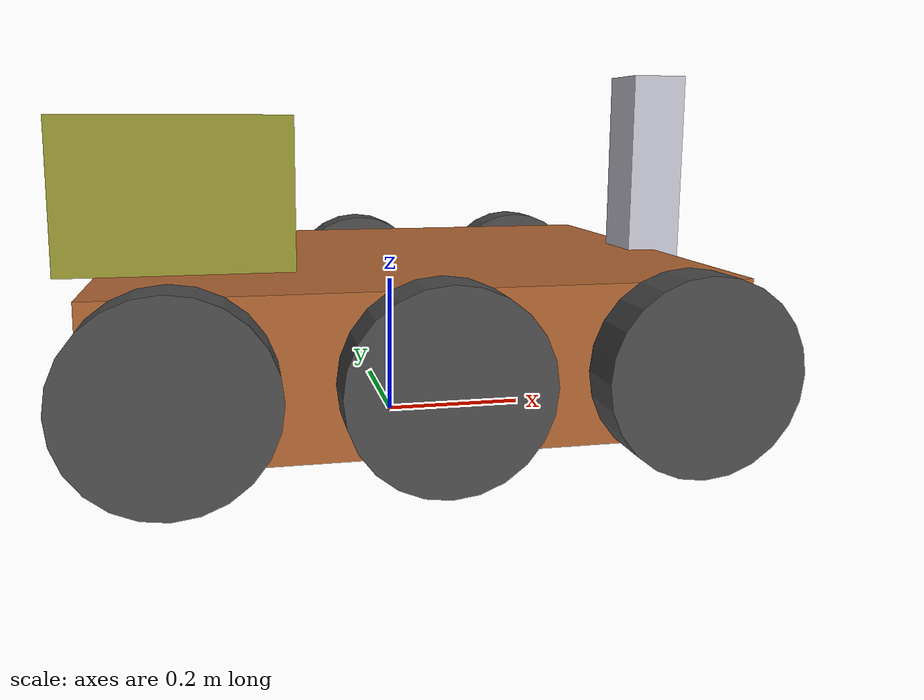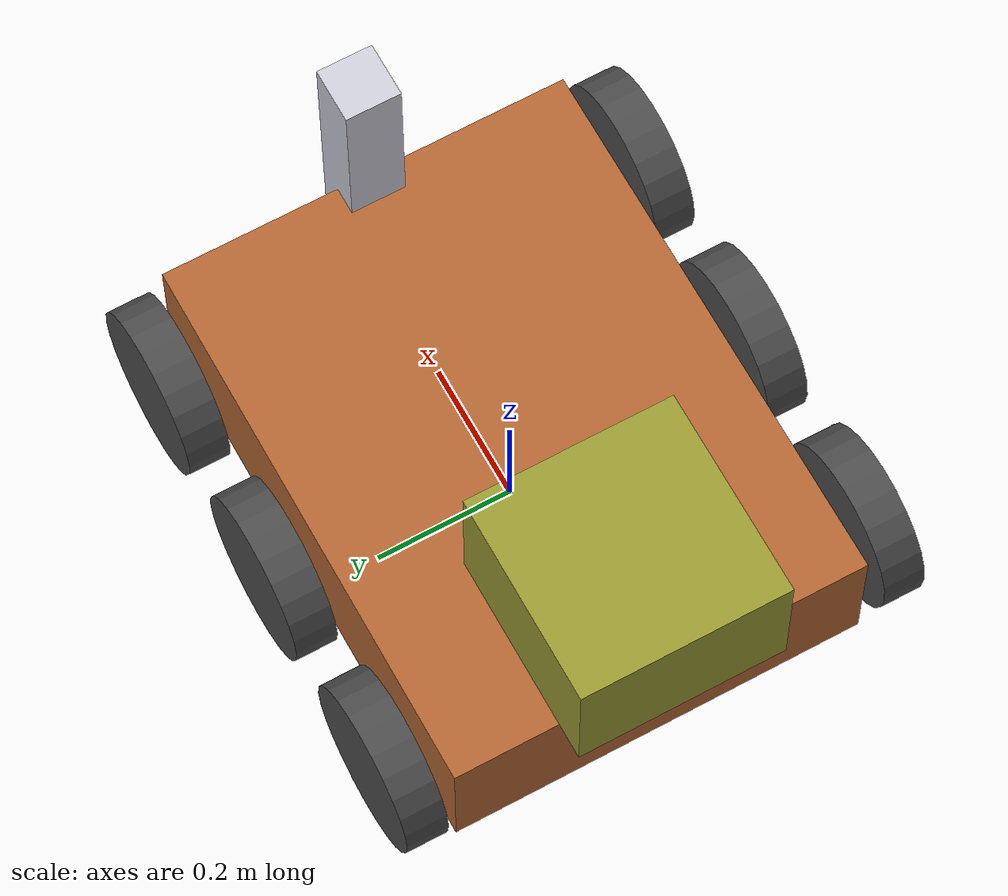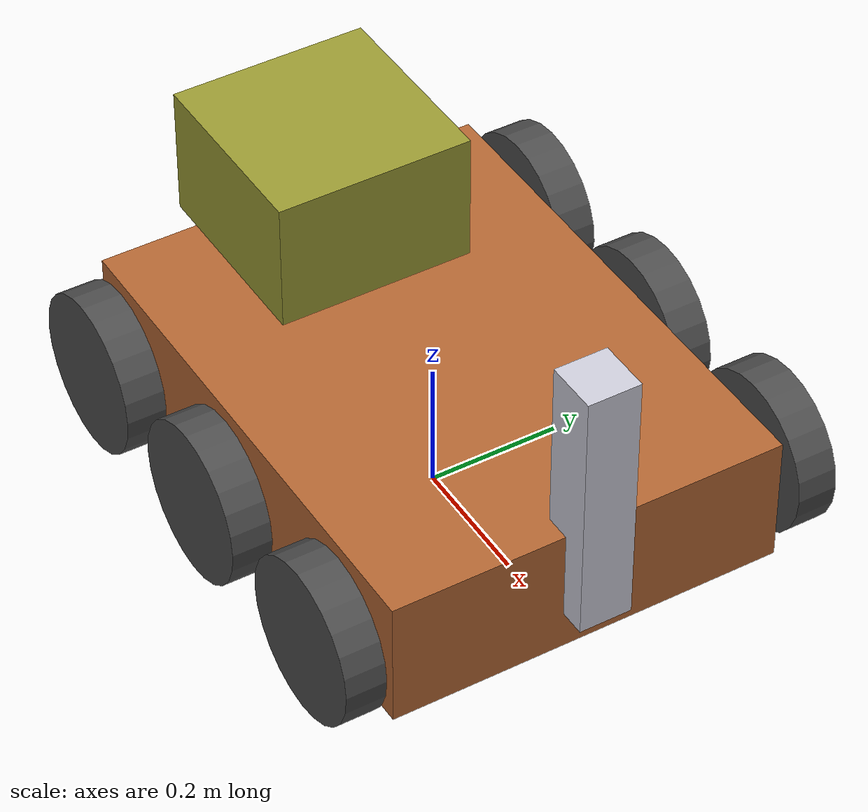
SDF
<?xml version="1.0"?>
<sdf version="1.9">
  <model name="excavator">

    <!-- Base chassis -->
    <link name="base_link">
      <pose>0 0 0.14 0 0 0</pose>
      <inertial>
        <mass>132</mass>
        <inertia>
          <ixx>4.4</ixx>
          <ixy>0</ixy>
          <ixz>0</ixz>
          <iyy>7.48</iyy>
          <iyz>0</iyz>
          <izz>11.0</izz>
        </inertia>
      </inertial>
      <collision name="base_collision">
        <geometry>
          <box>
            <size>0.8 0.6 0.2</size>
          </box>
        </geometry>
      </collision>
      <visual name="base_visual">
        <geometry>
          <box>
            <size>0.8 0.6 0.2</size>
          </box>
        </geometry>
        <material>
          <ambient>0.7 0.4 0.2 1</ambient>
          <diffuse>0.7 0.4 0.2 1</diffuse>
        </material>
      </visual>

      <!-- IMU sensor -->
      <sensor name="imu_sensor" type="imu">
        <always_on>true</always_on>
        <update_rate>100</update_rate>
        <topic>imu</topic>
      </sensor>

      <!-- Depth camera -->
      <sensor name="depth_camera_sensor" type="depth_camera">
        <pose relative_to="base_link">0.4 0 0.05 0 0 0</pose>
        <update_rate>15</update_rate>
        <topic>depth_camera</topic>
        <camera>
          <horizontal_fov>1.5708</horizontal_fov>
          <image>
            <width>160</width>
            <height>120</height>
          </image>
          <clip>
            <near>0.1</near>
            <far>20.0</far>
          </clip>
        </camera>
      </sensor>
    </link>

    <!-- Front left wheel -->
    <link name="front_left_wheel">
      <pose relative_to="base_link">0.3 0.35 0 -1.5708 0 0</pose>
      <inertial>
        <mass>2.0</mass>
        <inertia>
          <ixx>0.0078</ixx>
          <ixy>0</ixy>
          <ixz>0</ixz>
          <iyy>0.0078</iyy>
          <iyz>0</iyz>
          <izz>0.0144</izz>
        </inertia>
      </inertial>
      <collision name="front_left_wheel_collision">
        <geometry>
          <cylinder>
            <radius>0.12</radius>
            <length>0.06</length>
          </cylinder>
        </geometry>
        <surface>
          <friction>
            <ode>
              <mu>0.8</mu>
              <mu2>0.6</mu2>
            </ode>
          </friction>
        </surface>
      </collision>
      <visual name="front_left_wheel_visual">
        <geometry>
          <cylinder>
            <radius>0.12</radius>
            <length>0.06</length>
          </cylinder>
        </geometry>
        <material>
          <ambient>0.3 0.3 0.3 1</ambient>
          <diffuse>0.3 0.3 0.3 1</diffuse>
        </material>
      </visual>
    </link>
    <joint name="front_left_wheel_joint" type="revolute">
      <parent>base_link</parent>
      <child>front_left_wheel</child>
      <axis>
        <xyz>0 0 1</xyz>
      </axis>
    </joint>

    <!-- Front right wheel -->
    <link name="front_right_wheel">
      <pose relative_to="base_link">0.3 -0.35 0 -1.5708 0 0</pose>
      <inertial>
        <mass>2.0</mass>
        <inertia>
          <ixx>0.0078</ixx>
          <ixy>0</ixy>
          <ixz>0</ixz>
          <iyy>0.0078</iyy>
          <iyz>0</iyz>
          <izz>0.0144</izz>
        </inertia>
      </inertial>
      <collision name="front_right_wheel_collision">
        <geometry>
          <cylinder>
            <radius>0.12</radius>
            <length>0.06</length>
          </cylinder>
        </geometry>
        <surface>
          <friction>
            <ode>
              <mu>0.8</mu>
              <mu2>0.6</mu2>
            </ode>
          </friction>
        </surface>
      </collision>
      <visual name="front_right_wheel_visual">
        <geometry>
          <cylinder>
            <radius>0.12</radius>
            <length>0.06</length>
          </cylinder>
        </geometry>
        <material>
          <ambient>0.3 0.3 0.3 1</ambient>
          <diffuse>0.3 0.3 0.3 1</diffuse>
        </material>
      </visual>
    </link>
    <joint name="front_right_wheel_joint" type="revolute">
      <parent>base_link</parent>
      <child>front_right_wheel</child>
      <axis>
        <xyz>0 0 1</xyz>
      </axis>
    </joint>

    <link name="mid_left_wheel">
      <pose relative_to="base_link">0.0 0.35 0 -1.5708 0 0</pose>
      <inertial>
        <mass>2.0</mass>
        <inertia>
          <ixx>0.0078</ixx>
          <ixy>0</ixy>
          <ixz>0</ixz>
          <iyy>0.0078</iyy>
          <iyz>0</iyz>
          <izz>0.0144</izz>
        </inertia>
      </inertial>
      <collision name="mid_left_wheel_collision">
        <geometry>
          <cylinder>
            <radius>0.12</radius>
            <length>0.06</length>
          </cylinder>
        </geometry>
        <surface>
          <friction>
            <ode>
              <mu>0.8</mu>
              <mu2>0.05</mu2>
            </ode>
          </friction>
        </surface>
      </collision>
      <visual name="mid_left_wheel_visual">
        <geometry>
          <cylinder>
            <radius>0.12</radius>
            <length>0.06</length>
          </cylinder>
        </geometry>
        <material>
          <ambient>0.3 0.3 0.3 1</ambient>
          <diffuse>0.3 0.3 0.3 1</diffuse>
        </material>
      </visual>
    </link>
    <joint name="mid_left_wheel_joint" type="revolute">
      <parent>base_link</parent>
      <child>mid_left_wheel</child>
      <axis>
        <xyz>0 0 1</xyz>
      </axis>
    </joint>

    <!-- Mid right wheel — passive roller, see mid_left_wheel comment. -->
    <link name="mid_right_wheel">
      <pose relative_to="base_link">0.0 -0.35 0 -1.5708 0 0</pose>
      <inertial>
        <mass>2.0</mass>
        <inertia>
          <ixx>0.0078</ixx>
          <ixy>0</ixy>
          <ixz>0</ixz>
          <iyy>0.0078</iyy>
          <iyz>0</iyz>
          <izz>0.0144</izz>
        </inertia>
      </inertial>
      <collision name="mid_right_wheel_collision">
        <geometry>
          <cylinder>
            <radius>0.12</radius>
            <length>0.06</length>
          </cylinder>
        </geometry>
        <surface>
          <friction>
            <ode>
              <mu>0.8</mu>
              <mu2>0.05</mu2>
            </ode>
          </friction>
        </surface>
      </collision>
      <visual name="mid_right_wheel_visual">
        <geometry>
          <cylinder>
            <radius>0.12</radius>
            <length>0.06</length>
          </cylinder>
        </geometry>
        <material>
          <ambient>0.3 0.3 0.3 1</ambient>
          <diffuse>0.3 0.3 0.3 1</diffuse>
        </material>
      </visual>
    </link>
    <joint name="mid_right_wheel_joint" type="revolute">
      <parent>base_link</parent>
      <child>mid_right_wheel</child>
      <axis>
        <xyz>0 0 1</xyz>
      </axis>
    </joint>

    <!-- Rear left wheel -->
    <link name="rear_left_wheel">
      <pose relative_to="base_link">-0.3 0.35 0 -1.5708 0 0</pose>
      <inertial>
        <mass>2.0</mass>
        <inertia>
          <ixx>0.0078</ixx>
          <ixy>0</ixy>
          <ixz>0</ixz>
          <iyy>0.0078</iyy>
          <iyz>0</iyz>
          <izz>0.0144</izz>
        </inertia>
      </inertial>
      <collision name="rear_left_wheel_collision">
        <geometry>
          <cylinder>
            <radius>0.12</radius>
            <length>0.06</length>
          </cylinder>
        </geometry>
        <surface>
          <friction>
            <ode>
              <mu>0.8</mu>
              <mu2>0.6</mu2>
            </ode>
          </friction>
        </surface>
      </collision>
      <visual name="rear_left_wheel_visual">
        <geometry>
          <cylinder>
            <radius>0.12</radius>
            <length>0.06</length>
          </cylinder>
        </geometry>
        <material>
          <ambient>0.3 0.3 0.3 1</ambient>
          <diffuse>0.3 0.3 0.3 1</diffuse>
        </material>
      </visual>
    </link>
    <joint name="rear_left_wheel_joint" type="revolute">
      <parent>base_link</parent>
      <child>rear_left_wheel</child>
      <axis>
        <xyz>0 0 1</xyz>
      </axis>
    </joint>

    <!-- Rear right wheel -->
    <link name="rear_right_wheel">
      <pose relative_to="base_link">-0.3 -0.35 0 -1.5708 0 0</pose>
      <inertial>
        <mass>2.0</mass>
        <inertia>
          <ixx>0.0078</ixx>
          <ixy>0</ixy>
          <ixz>0</ixz>
          <iyy>0.0078</iyy>
          <iyz>0</iyz>
          <izz>0.0144</izz>
        </inertia>
      </inertial>
      <collision name="rear_right_wheel_collision">
        <geometry>
          <cylinder>
            <radius>0.12</radius>
            <length>0.06</length>
          </cylinder>
        </geometry>
        <surface>
          <friction>
            <ode>
              <mu>0.8</mu>
              <mu2>0.6</mu2>
            </ode>
          </friction>
        </surface>
      </collision>
      <visual name="rear_right_wheel_visual">
        <geometry>
          <cylinder>
            <radius>0.12</radius>
            <length>0.06</length>
          </cylinder>
        </geometry>
        <material>
          <ambient>0.3 0.3 0.3 1</ambient>
          <diffuse>0.3 0.3 0.3 1</diffuse>
        </material>
      </visual>
    </link>
    <joint name="rear_right_wheel_joint" type="revolute">
      <parent>base_link</parent>
      <child>rear_right_wheel</child>
      <axis>
        <xyz>0 0 1</xyz>
      </axis>
    </joint>

    <link name="drill_arm">
      <pose relative_to="base_link">0.4 0 0.16 0 0 0</pose>
      <inertial>
        <mass>5</mass>
        <inertia>
          <ixx>0.06933</ixx>
          <ixy>0</ixy>
          <ixz>0</ixz>
          <iyy>0.06933</iyy>
          <iyz>0</iyz>
          <izz>0.00533</izz>
        </inertia>
      </inertial>
      <collision name="drill_arm_collision">
        <geometry>
          <box>
            <size>0.08 0.08 0.4</size>
          </box>
        </geometry>
      </collision>
      <visual name="drill_arm_visual">
        <geometry>
          <box>
            <size>0.08 0.08 0.4</size>
          </box>
        </geometry>
        <material>
          <ambient>0.8 0.8 0.85 1</ambient>
          <diffuse>0.8 0.8 0.85 1</diffuse>
        </material>
      </visual>
    </link>
    <joint name="drill_joint" type="prismatic">
      <parent>base_link</parent>
      <child>drill_arm</child>
      <axis>
        <xyz>0 0 -1</xyz>
        <limit>
          <lower>0</lower>
          <upper>0.3</upper>
        </limit>
        <dynamics>
          <damping>200</damping>
          <friction>200</friction>
        </dynamics>
      </axis>
    </joint>

    <!-- Hopper -->
    <link name="hopper">
      <pose relative_to="base_link">-0.3 0 0.2 0 0 0</pose>
      <inertial>
        <mass>3</mass>
        <inertia>
          <ixx>0.0325</ixx>
          <ixy>0</ixy>
          <ixz>0</ixz>
          <iyy>0.0325</iyy>
          <iyz>0</iyz>
          <izz>0.045</izz>
        </inertia>
      </inertial>
      <collision name="hopper_collision">
        <geometry>
          <box>
            <size>0.3 0.3 0.2</size>
          </box>
        </geometry>
      </collision>
      <visual name="hopper_visual">
        <geometry>
          <box>
            <size>0.3 0.3 0.2</size>
          </box>
        </geometry>
        <material>
          <ambient>0.6 0.6 0.2 1</ambient>
          <diffuse>0.6 0.6 0.2 1</diffuse>
        </material>
      </visual>
    </link>
    <joint name="hopper_joint" type="fixed">
      <parent>base_link</parent>
      <child>hopper</child>
    </joint>

    <plugin filename="gz-sim-diff-drive-system" name="gz::sim::systems::DiffDrive">
      <left_joint>front_left_wheel_joint</left_joint>
      <left_joint>rear_left_wheel_joint</left_joint>
      <right_joint>front_right_wheel_joint</right_joint>
      <right_joint>rear_right_wheel_joint</right_joint>
      <wheel_separation>0.7</wheel_separation>
      <wheel_radius>0.12</wheel_radius>
      <max_linear_acceleration>0.3</max_linear_acceleration>
      <odom_publish_frequency>20</odom_publish_frequency>
      <frame_id>odom</frame_id>
      <child_frame_id>base_link</child_frame_id>
      <cmd_timeout>0.5</cmd_timeout>
    </plugin>

    <!-- JointStatePublisher plugin -->
    <plugin filename="gz-sim-joint-state-publisher-system" name="gz::sim::systems::JointStatePublisher"/>

    <plugin filename="gz-sim-pose-publisher-system"
            name="gz::sim::systems::PosePublisher">
      <publish_model_pose>true</publish_model_pose>
      <publish_link_pose>false</publish_link_pose>
      <publish_collision_pose>false</publish_collision_pose>
      <publish_visual_pose>false</publish_visual_pose>
      <publish_sensor_pose>false</publish_sensor_pose>
      <use_pose_vector_msg>true</use_pose_vector_msg>
      <update_frequency>20</update_frequency>
    </plugin>

  </model>
</sdf>
